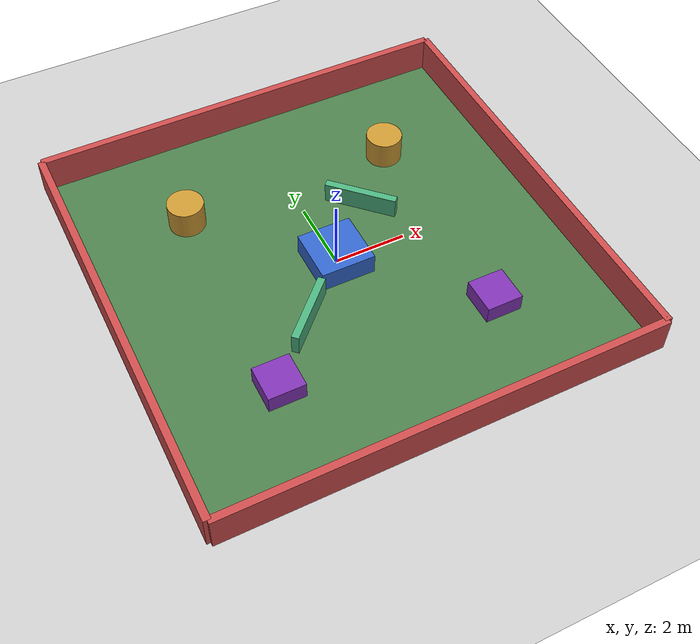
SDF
<?xml version="1.0" ?>
<sdf version="1.8">
  <world name="custom_task_world">

    <!-- Physics -->
    <physics name="1ms" type="ignored">
      <max_step_size>0.001</max_step_size>
      <real_time_factor>1.0</real_time_factor>
    </physics>

    <!-- Required Plugins -->
    <plugin
      filename="gz-sim-physics-system"
      name="gz::sim::systems::Physics">
    </plugin>

    <plugin
      filename="gz-sim-user-commands-system"
      name="gz::sim::systems::UserCommands">
    </plugin>

    <plugin
      filename="gz-sim-scene-broadcaster-system"
      name="gz::sim::systems::SceneBroadcaster">
    </plugin>

    <plugin
      filename="gz-sim-sensors-system"
      name="gz::sim::systems::Sensors">
      <render_engine>ogre2</render_engine>
    </plugin>

    <!-- GUI -->
    <gui fullscreen="0">
      <!-- 3D View -->
      <plugin filename="MinimalScene" name="3D View">
        <gz-gui>
          <title>3D View</title>
          <property type="bool" key="showTitleBar">false</property>
          <property type="string" key="state">docked</property>
        </gz-gui>
        <engine>ogre2</engine>
        <scene>scene</scene>
        <ambient_light>0.5 0.5 0.5</ambient_light>
        <background_color>0.4 0.6 0.8</background_color>
        <camera_pose>-6 -6 6 0 0.5 0.78</camera_pose>
      </plugin>

      <!-- World Control -->
      <plugin filename="WorldControl" name="World control">
        <gz-gui>
          <title>World control</title>
          <property type="bool" key="showTitleBar">false</property>
          <property type="bool" key="resizable">false</property>
          <property type="double" key="height">72</property>
          <property type="double" key="width">121</property>
          <property type="double" key="z">1</property>
          <property type="string" key="state">floating</property>
          <anchors target="3D View">
            <line own="left" target="left"/>
            <line own="bottom" target="bottom"/>
          </anchors>
        </gz-gui>
        <play_pause>true</play_pause>
        <step>true</step>
        <start_paused>false</start_paused>
      </plugin>

      <!-- World Stats -->
      <plugin filename="WorldStats" name="World stats">
        <gz-gui>
          <title>World stats</title>
          <property type="bool" key="showTitleBar">false</property>
          <property type="bool" key="resizable">false</property>
          <property type="double" key="height">110</property>
          <property type="double" key="width">290</property>
          <property type="double" key="z">1</property>
          <property type="string" key="state">floating</property>
          <anchors target="3D View">
            <line own="right" target="right"/>
            <line own="bottom" target="bottom"/>
          </anchors>
        </gz-gui>
        <sim_time>true</sim_time>
        <real_time>true</real_time>
        <real_time_factor>true</real_time_factor>
        <iterations>true</iterations>
      </plugin>

      <!-- Entity Tree -->
      <plugin filename="EntityTree" name="Entity tree">
      </plugin>
    </gui>

    <!-- Lighting -->
    <light type="directional" name="sun">
      <cast_shadows>true</cast_shadows>
      <pose>0 0 10 0 0 0</pose>
      <diffuse>0.8 0.8 0.8 1</diffuse>
      <specular>0.3 0.3 0.3 1</specular>
      <attenuation>
        <range>1000</range>
        <constant>0.9</constant>
        <linear>0.01</linear>
        <quadratic>0.001</quadratic>
      </attenuation>
      <direction>-0.5 0.1 -0.9</direction>
    </light>

    <!-- Additional ambient light -->
    <light type="directional" name="ambient_light">
      <pose>0 0 5 0 0 0</pose>
      <diffuse>0.4 0.4 0.4 1</diffuse>
      <specular>0.1 0.1 0.1 1</specular>
      <direction>0 0 -1</direction>
    </light>

    <!-- Ground Plane -->
    <include>
      <uri>https://fuel.gazebosim.org/1.0/OpenRobotics/models/Ground Plane</uri>
    </include>

    <!-- Custom Arena Floor (colored) -->
    <model name="arena_floor">
      <static>true</static>
      <link name="floor_link">
        <pose>0 0 0.005 0 0 0</pose>
        <collision name="floor_collision">
          <geometry>
            <box>
              <size>12 12 0.01</size>
            </box>
          </geometry>
        </collision>
        <visual name="floor_visual">
          <geometry>
            <box>
              <size>12 12 0.01</size>
            </box>
          </geometry>
          <material>
            <ambient>0.3 0.5 0.3 1</ambient>
            <diffuse>0.3 0.5 0.3 1</diffuse>
            <specular>0.1 0.1 0.1 1</specular>
          </material>
        </visual>
      </link>
    </model>

    <!-- Arena Boundaries -->
    <!-- North Wall -->
    <model name="north_boundary">
      <static>true</static>
      <pose>0 6 0.5 0 0 0</pose>
      <link name="link">
        <collision name="collision">
          <geometry>
            <box>
              <size>12 0.2 1</size>
            </box>
          </geometry>
        </collision>
        <visual name="visual">
          <geometry>
            <box>
              <size>12 0.2 1</size>
            </box>
          </geometry>
          <material>
            <ambient>0.8 0.3 0.3 1</ambient>
            <diffuse>0.8 0.3 0.3 1</diffuse>
          </material>
        </visual>
      </link>
    </model>

    <!-- South Wall -->
    <model name="south_boundary">
      <static>true</static>
      <pose>0 -6 0.5 0 0 0</pose>
      <link name="link">
        <collision name="collision">
          <geometry>
            <box>
              <size>12 0.2 1</size>
            </box>
          </geometry>
        </collision>
        <visual name="visual">
          <geometry>
            <box>
              <size>12 0.2 1</size>
            </box>
          </geometry>
          <material>
            <ambient>0.8 0.3 0.3 1</ambient>
            <diffuse>0.8 0.3 0.3 1</diffuse>
          </material>
        </visual>
      </link>
    </model>

    <!-- East Wall -->
    <model name="east_boundary">
      <static>true</static>
      <pose>6 0 0.5 0 0 0</pose>
      <link name="link">
        <collision name="collision">
          <geometry>
            <box>
              <size>0.2 12 1</size>
            </box>
          </geometry>
        </collision>
        <visual name="visual">
          <geometry>
            <box>
              <size>0.2 12 1</size>
            </box>
          </geometry>
          <material>
            <ambient>0.8 0.3 0.3 1</ambient>
            <diffuse>0.8 0.3 0.3 1</diffuse>
          </material>
        </visual>
      </link>
    </model>

    <!-- West Wall -->
    <model name="west_boundary">
      <static>true</static>
      <pose>-6 0 0.5 0 0 0</pose>
      <link name="link">
        <collision name="collision">
          <geometry>
            <box>
              <size>0.2 12 1</size>
            </box>
          </geometry>
        </collision>
        <visual name="visual">
          <geometry>
            <box>
              <size>0.2 12 1</size>
            </box>
          </geometry>
          <material>
            <ambient>0.8 0.3 0.3 1</ambient>
            <diffuse>0.8 0.3 0.3 1</diffuse>
          </material>
        </visual>
      </link>
    </model>

    <!-- Obstacle 1: Large Central Box -->
    <model name="obstacle_box_1">
      <static>true</static>
      <pose>0 0 0.3 0 0 0</pose>
      <link name="link">
        <collision name="collision">
          <geometry>
            <box>
              <size>1.5 1.5 0.6</size>
            </box>
          </geometry>
        </collision>
        <visual name="visual">
          <geometry>
            <box>
              <size>1.5 1.5 0.6</size>
            </box>
          </geometry>
          <material>
            <ambient>0.2 0.4 0.8 1</ambient>
            <diffuse>0.2 0.4 0.8 1</diffuse>
            <specular>0.2 0.2 0.2 1</specular>
          </material>
        </visual>
      </link>
    </model>

    <!-- Obstacle 2: Cylinder Top-Left -->
    <model name="obstacle_cylinder_1">
      <static>true</static>
      <pose>-3 3 0.4 0 0 0</pose>
      <link name="link">
        <collision name="collision">
          <geometry>
            <cylinder>
              <radius>0.5</radius>
              <length>0.8</length>
            </cylinder>
          </geometry>
        </collision>
        <visual name="visual">
          <geometry>
            <cylinder>
              <radius>0.5</radius>
              <length>0.8</length>
            </cylinder>
          </geometry>
          <material>
            <ambient>0.8 0.6 0.2 1</ambient>
            <diffuse>0.8 0.6 0.2 1</diffuse>
          </material>
        </visual>
      </link>
    </model>

    <!-- Obstacle 3: Cylinder Top-Right -->
    <model name="obstacle_cylinder_2">
      <static>true</static>
      <pose>3 3 0.4 0 0 0</pose>
      <link name="link">
        <collision name="collision">
          <geometry>
            <cylinder>
              <radius>0.5</radius>
              <length>0.8</length>
            </cylinder>
          </geometry>
        </collision>
        <visual name="visual">
          <geometry>
            <cylinder>
              <radius>0.5</radius>
              <length>0.8</length>
            </cylinder>
          </geometry>
          <material>
            <ambient>0.8 0.6 0.2 1</ambient>
            <diffuse>0.8 0.6 0.2 1</diffuse>
          </material>
        </visual>
      </link>
    </model>

    <!-- Obstacle 4: Small Box Bottom-Left -->
    <model name="obstacle_box_2">
      <static>true</static>
      <pose>-3 -3 0.25 0 0 0</pose>
      <link name="link">
        <collision name="collision">
          <geometry>
            <box>
              <size>1 1 0.5</size>
            </box>
          </geometry>
        </collision>
        <visual name="visual">
          <geometry>
            <box>
              <size>1 1 0.5</size>
            </box>
          </geometry>
          <material>
            <ambient>0.5 0.2 0.7 1</ambient>
            <diffuse>0.5 0.2 0.7 1</diffuse>
          </material>
        </visual>
      </link>
    </model>

    <!-- Obstacle 5: Small Box Bottom-Right -->
    <model name="obstacle_box_3">
      <static>true</static>
      <pose>3 -3 0.25 0 0 0</pose>
      <link name="link">
        <collision name="collision">
          <geometry>
            <box>
              <size>1 1 0.5</size>
            </box>
          </geometry>
        </collision>
        <visual name="visual">
          <geometry>
            <box>
              <size>1 1 0.5</size>
            </box>
          </geometry>
          <material>
            <ambient>0.5 0.2 0.7 1</ambient>
            <diffuse>0.5 0.2 0.7 1</diffuse>
          </material>
        </visual>
      </link>
    </model>

    <!-- Obstacle 6: Narrow Wall Obstacle -->
    <model name="obstacle_wall_1">
      <static>true</static>
      <pose>-1.5 -1.5 0.3 0 0 0.785</pose>
      <link name="link">
        <collision name="collision">
          <geometry>
            <box>
              <size>2 0.2 0.6</size>
            </box>
          </geometry>
        </collision>
        <visual name="visual">
          <geometry>
            <box>
              <size>2 0.2 0.6</size>
            </box>
          </geometry>
          <material>
            <ambient>0.3 0.7 0.5 1</ambient>
            <diffuse>0.3 0.7 0.5 1</diffuse>
          </material>
        </visual>
      </link>
    </model>

    <!-- Obstacle 7: Narrow Wall Obstacle 2 -->
    <model name="obstacle_wall_2">
      <static>true</static>
      <pose>1.5 1.5 0.3 0 0 -0.785</pose>
      <link name="link">
        <collision name="collision">
          <geometry>
            <box>
              <size>2 0.2 0.6</size>
            </box>
          </geometry>
        </collision>
        <visual name="visual">
          <geometry>
            <box>
              <size>2 0.2 0.6</size>
            </box>
          </geometry>
          <material>
            <ambient>0.3 0.7 0.5 1</ambient>
            <diffuse>0.3 0.7 0.5 1</diffuse>
          </material>
        </visual>
      </link>
    </model>

  </world>
</sdf>
